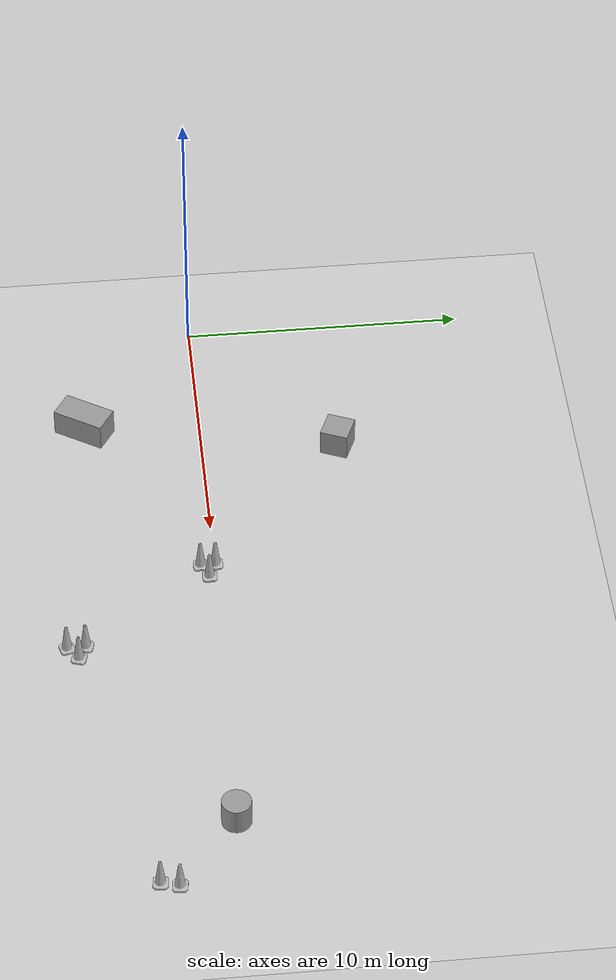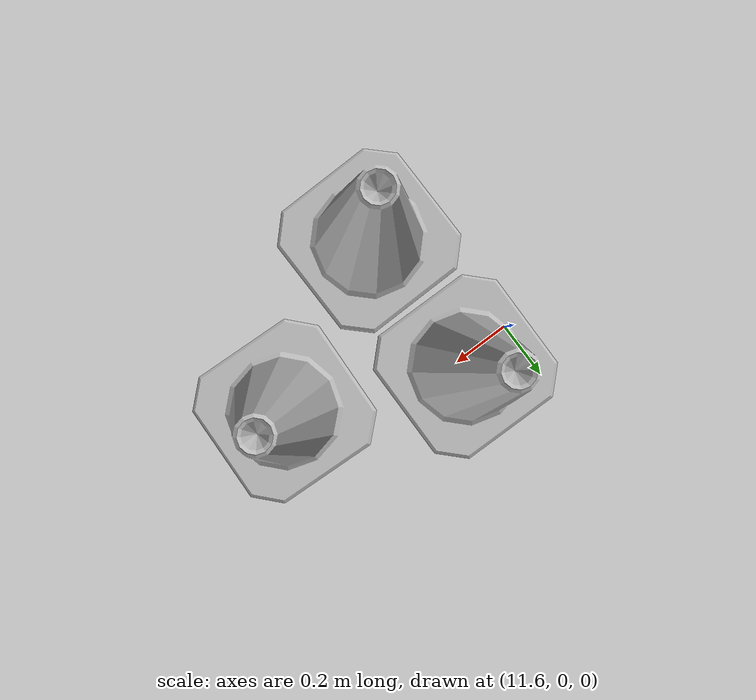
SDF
<sdf version="1.6">
 <world name="default">
  <light name="sun" type="directional">
   <pose>0 0 10 0 -0 0</pose>
   <diffuse>0.8 0.8 0.8 1</diffuse>
   <specular>0.2 0.2 0.2 1</specular>
   <attenuation>
    <range>1000</range>
    <constant>0.9</constant>
    <linear>0.01</linear>
    <quadratic>0.001</quadratic>
   </attenuation>
   <direction>-0.5 0.1 -0.9</direction>
  </light>
  <model name="ground_plane">
   <static>1</static>
   <link name="link">
    <collision name="collision">
     <geometry><plane><normal>0 0 1</normal><size>100 100</size></plane></geometry>
     <surface><friction><ode><mu>100</mu><mu2>50</mu2></ode></friction></surface>
    </collision>
    <visual name="visual">
     <cast_shadows>0</cast_shadows>
     <geometry><plane><normal>0 0 1</normal><size>100 100</size></plane></geometry>
     <material>
      <script><uri>file://media/materials/scripts/gazebo.material</uri><name>Gazebo/Grey</name></script>
     </material>
    </visual>
   </link>
  </model>
  <gravity>0 0 -9.8</gravity>
  <magnetic_field>6e-06 2.3e-05 -4.2e-05</magnetic_field>
  <atmosphere type="adiabatic"/>
  <physics name="default_physics" default="0" type="ode">
   <max_step_size>0.001</max_step_size>
   <real_time_factor>1</real_time_factor>
   <real_time_update_rate>1000</real_time_update_rate>
  </physics>
  <scene><ambient>0.4 0.4 0.4 1</ambient><background>0.7 0.7 0.7 1</background><shadows>1</shadows></scene>
  <audio><device>default</device></audio>
  <spherical_coordinates>
   <surface_model>EARTH_WGS84</surface_model>
   <latitude_deg>0</latitude_deg>
   <longitude_deg>0</longitude_deg>
   <elevation>0</elevation>
   <heading_deg>0</heading_deg>
  </spherical_coordinates>
  <model name="unit_box">
   <pose>6.31332 4.88807 0.5 0 0 -1.97418</pose>
   <link name="link">
    <inertial>
     <mass>1</mass>
     <inertia>
      <ixx>0.166667</ixx>
      <ixy>0</ixy>
      <ixz>0</ixz>
      <iyy>0.166667</iyy>
      <iyz>0</iyz>
      <izz>0.166667</izz>
     </inertia>
    </inertial>
    <collision name="collision"><geometry><box><size>1 1 1</size></box></geometry></collision>
    <visual name="visual">
     <geometry><box><size>1 1 1</size></box></geometry>
     <material>
      <script><name>Gazebo/Grey</name><uri>file://media/materials/scripts/gazebo.material</uri></script>
     </material>
    </visual>
   </link>
  </model>
  <model name="unit_box_clone">
   <pose>4.67916 -4.12545 0.49999 -1.1e-05 -0 -0.558178</pose>
   <link name="link">
    <inertial>
     <mass>1</mass>
     <inertia>
      <ixx>0.166667</ixx>
      <ixy>0</ixy>
      <ixz>0</ixz>
      <iyy>0.166667</iyy>
      <iyz>0</iyz>
      <izz>0.166667</izz>
     </inertia>
    </inertial>
    <collision name="collision"><geometry><box><size>1 1.89246 1</size></box></geometry></collision>
    <visual name="visual">
     <geometry><box><size>1 1.89246 1</size></box></geometry>
     <material>
      <script><name>Gazebo/Grey</name><uri>file://media/materials/scripts/gazebo.material</uri></script>
     </material>
    </visual>
   </link>
  </model>
  <model name="Construction Cone">
   <link name="link">
    <collision name="collision">
     <geometry>
      <mesh><scale>10 10 10</scale><uri>model://construction_cone/meshes/construction_cone.dae</uri></mesh>
     </geometry>
    </collision>
    <visual name="visual">
     <geometry>
      <mesh><scale>10 10 10</scale><uri>model://construction_cone/meshes/construction_cone.dae</uri></mesh>
     </geometry>
    </visual>
    <inertial>
     <inertia><ixx>1</ixx><ixy>0</ixy><ixz>0</ixz><iyy>1</iyy><iyz>0</iyz><izz>1</izz></inertia>
     <mass>1</mass>
    </inertial>
   </link>
   <pose>11.7895 0.022687 -0 0 -1e-06 -0.018176</pose>
  </model>
  <model name="Construction Cone_0">
   <link name="link">
    <collision name="collision">
     <geometry>
      <mesh><scale>10 10 10</scale><uri>model://construction_cone/meshes/construction_cone.dae</uri></mesh>
     </geometry>
    </collision>
    <visual name="visual">
     <geometry>
      <mesh><scale>10 10 10</scale><uri>model://construction_cone/meshes/construction_cone.dae</uri></mesh>
     </geometry>
    </visual>
    <inertial>
     <inertia><ixx>1</ixx><ixy>0</ixy><ixz>0</ixz><iyy>1</iyy><iyz>0</iyz><izz>1</izz></inertia>
     <mass>1</mass>
    </inertial>
   </link>
   <pose>11.7897 -0.500178 -1e-06 2e-06 2e-06 0.005995</pose>
  </model>
  <model name="Construction Cone_1">
   <link name="link">
    <collision name="collision">
     <geometry>
      <mesh><scale>10 10 10</scale><uri>model://construction_cone/meshes/construction_cone.dae</uri></mesh>
     </geometry>
    </collision>
    <visual name="visual">
     <geometry>
      <mesh><scale>10 10 10</scale><uri>model://construction_cone/meshes/construction_cone.dae</uri></mesh>
     </geometry>
    </visual>
    <inertial>
     <inertia><ixx>1</ixx><ixy>0</ixy><ixz>0</ixz><iyy>1</iyy><iyz>0</iyz><izz>1</izz></inertia>
     <mass>1</mass>
    </inertial>
   </link>
   <pose>12.3521 -0.223672 -0 0 -1e-06 -0.052967</pose>
  </model>
  <model name="Construction Cone_clone">
   <link name="link">
    <collision name="collision">
     <geometry>
      <mesh><scale>10 10 10</scale><uri>model://construction_cone/meshes/construction_cone.dae</uri></mesh>
     </geometry>
    </collision>
    <visual name="visual">
     <geometry>
      <mesh><scale>10 10 10</scale><uri>model://construction_cone/meshes/construction_cone.dae</uri></mesh>
     </geometry>
    </visual>
    <inertial>
     <inertia><ixx>1</ixx><ixy>0</ixy><ixz>0</ixz><iyy>1</iyy><iyz>0</iyz><izz>1</izz></inertia>
     <mass>1</mass>
    </inertial>
   </link>
   <pose>15.2705 -5.33631 -0 0 -0 0.248498</pose>
  </model>
  <model name="Construction Cone_clone_0">
   <link name="link">
    <collision name="collision">
     <geometry>
      <mesh><scale>10 10 10</scale><uri>model://construction_cone/meshes/construction_cone.dae</uri></mesh>
     </geometry>
    </collision>
    <visual name="visual">
     <geometry>
      <mesh><scale>10 10 10</scale><uri>model://construction_cone/meshes/construction_cone.dae</uri></mesh>
     </geometry>
    </visual>
    <inertial>
     <inertia><ixx>1</ixx><ixy>0</ixy><ixz>0</ixz><iyy>1</iyy><iyz>0</iyz><izz>1</izz></inertia>
     <mass>1</mass>
    </inertial>
   </link>
   <pose>15.2352 -4.68953 -0 -0 -0 -0.228661</pose>
  </model>
  <model name="Construction Cone_clone_1">
   <link name="link">
    <collision name="collision">
     <geometry>
      <mesh><scale>10 10 10</scale><uri>model://construction_cone/meshes/construction_cone.dae</uri></mesh>
     </geometry>
    </collision>
    <visual name="visual">
     <geometry>
      <mesh><scale>10 10 10</scale><uri>model://construction_cone/meshes/construction_cone.dae</uri></mesh>
     </geometry>
    </visual>
    <inertial>
     <inertia><ixx>1</ixx><ixy>0</ixy><ixz>0</ixz><iyy>1</iyy><iyz>0</iyz><izz>1</izz></inertia>
     <mass>1</mass>
    </inertial>
   </link>
   <pose>15.7547 -4.95108 -0 0 0 -0.2905</pose>
  </model>
  <model name="unit_cylinder">
   <pose>23.3528 -0.260943 0.499993 -3e-06 -5e-06 -0</pose>
   <link name="link">
    <inertial>
     <mass>1</mass>
     <inertia><ixx>0.145833</ixx><ixy>0</ixy><ixz>0</ixz><iyy>0.145833</iyy><iyz>0</iyz><izz>0.125</izz></inertia>
    </inertial>
    <collision name="collision">
     <geometry><cylinder><radius>0.5</radius><length>1</length></cylinder></geometry>
    </collision>
    <visual name="visual">
     <geometry><cylinder><radius>0.5</radius><length>1</length></cylinder></geometry>
     <material>
      <script><name>Gazebo/Grey</name><uri>file://media/materials/scripts/gazebo.material</uri></script>
     </material>
    </visual>
   </link>
  </model>
  <model name="Construction Cone_1_clone">
   <link name="link">
    <collision name="collision">
     <geometry>
      <mesh><scale>10 10 10</scale><uri>model://construction_cone/meshes/construction_cone.dae</uri></mesh>
     </geometry>
    </collision>
    <visual name="visual">
     <geometry>
      <mesh><scale>10 10 10</scale><uri>model://construction_cone/meshes/construction_cone.dae</uri></mesh>
     </geometry>
    </visual>
    <inertial>
     <inertia><ixx>1</ixx><ixy>0</ixy><ixz>0</ixz><iyy>1</iyy><iyz>0</iyz><izz>1</izz></inertia>
     <mass>1</mass>
    </inertial>
   </link>
   <pose>25.868 -2.29286 -1e-06 2e-06 2e-06 -0.116529</pose>
  </model>
  <model name="Construction Cone_1_clone_0">
   <link name="link">
    <collision name="collision">
     <geometry>
      <mesh><scale>10 10 10</scale><uri>model://construction_cone/meshes/construction_cone.dae</uri></mesh>
     </geometry>
    </collision>
    <visual name="visual">
     <geometry>
      <mesh><scale>10 10 10</scale><uri>model://construction_cone/meshes/construction_cone.dae</uri></mesh>
     </geometry>
    </visual>
    <inertial>
     <inertia><ixx>1</ixx><ixy>0</ixy><ixz>0</ixz><iyy>1</iyy><iyz>0</iyz><izz>1</izz></inertia>
     <mass>1</mass>
    </inertial>
   </link>
   <pose>25.6996 -2.91195 -1e-05 0 0 -0.116529</pose>
  </model>
 </world>
</sdf>
